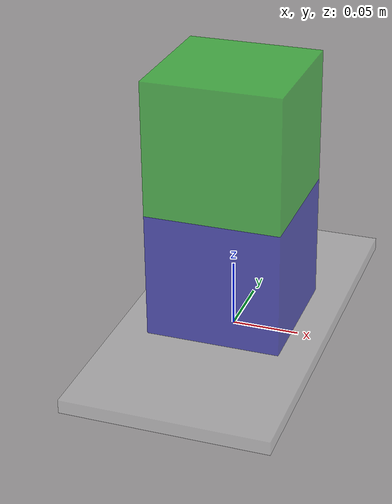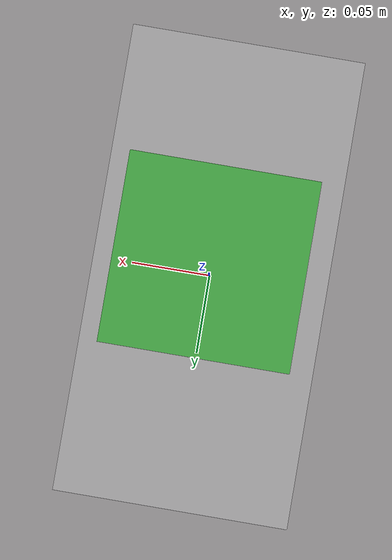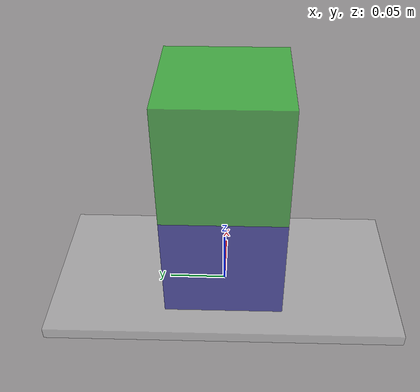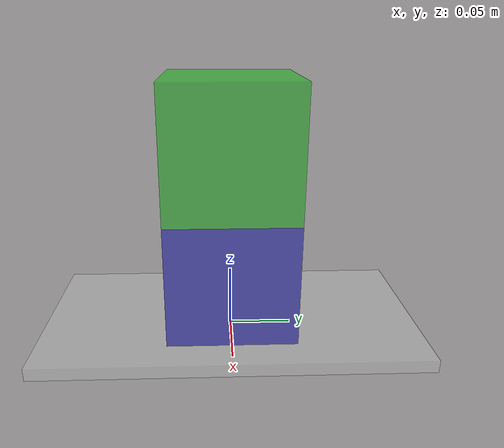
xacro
<?xml version="1.0"?>
<robot name="test_robot" xmlns:xacro="http://ros.org/wiki/xacro">

    <!-- Materials -->
    <material name="blue">
        <color rgba="0 0 0.8 0.5"/>
    </material>

    <material name="green">
        <color rgba="0 .8 0 0.5"/>
    </material>
    <material name="opaque_white">
        <color rgba="1 1 1 0.1"/>
    </material>

     <!-- Base Properties -->
    <xacro:property name="footprint_height" value="0.01" />
    <xacro:property name="footprint_len" value="0.15" />
    <xacro:property name="footprint_width" value="0.3" />

    <!-- Base Properties -->
    <xacro:property name="base_height" value="0.01" />
    <xacro:property name="base_len" value="0.1" />
    <xacro:property name="base_width" value="0.1" />

    <!-- Base Footprint -->
    <link name="footprint">
        <visual>
            <geometry>
                <box size="0.15 0.3 ${footprint_height}"/>
            </geometry>
            <material name="opaque_white"/>
            <origin rpy="0 0 0" xyz="0 0 0.005"/>
        </visual>
    </link>

    <!-- Footprint -> Base Joint -->
    <joint name="footprint_base" type="fixed">
        <parent link="footprint"/>
        <child link="base_link"/>
        <origin rpy="0 0 0" xyz="0 0 0.005"/>
    </joint>

    <!-- Base Link -->
    <link name="base_link">
        <visual>
            <geometry>
                <box size="0.1 0.1 0.1"/>
            </geometry>
            <material name="blue"/>
            <origin rpy="0 0 0" xyz="0 0 0.05"/>
        </visual>
    </link>

    <!-- Base -> RLJoint -->
    <joint name="base_right_leg" type="fixed">
        <parent link="base_link"/>
        <child link="right_leg_link"/>
        <origin rpy="0 0 0" xyz="0 0 0.15"/>
    </joint>

    <!-- RL Link -->
    <link name="right_leg_link">
        <visual>
            <geometry>
                <box size="0.1 0.1 0.1"/>
            </geometry>
            <material name="green"/>
            <origin rpy="0 0 0" xyz="0 0 0"/>
        </visual>
    </link>
</robot>
